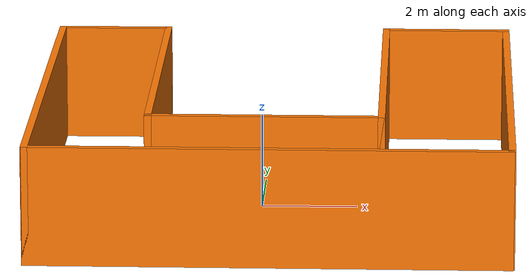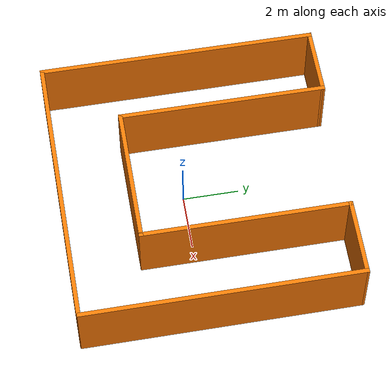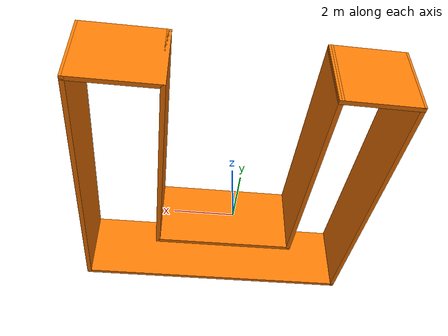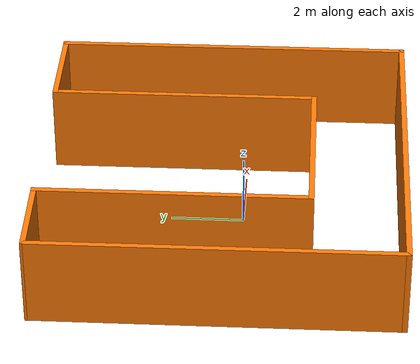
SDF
<?xml version='1.0'?>
<sdf version='1.6'>
  <model name='UWorld.'>
    <pose frame=''>0.277171 0.54339 0 0 -0 0</pose>
    <link name='Wall_0'>
      <collision name='Wall_0_Collision'>
        <geometry>
          <box>
            <size>10 0.15 2.5</size>
          </box>
        </geometry>
        <pose frame=''>0 0 1.25 0 -0 0</pose>
      </collision>
      <visual name='Wall_0_Visual'>
        <pose frame=''>0 0 1.25 0 -0 0</pose>
        <geometry>
          <box>
            <size>10 0.15 2.5</size>
          </box>
        </geometry>
        <material>
          <script>
            <uri>file://media/materials/scripts/gazebo.material</uri>
            <name>Gazebo/Grey</name>
          </script>
          <ambient>0.996078 0.47451 0.0196078 1</ambient>
        </material>
        <meta>
          <layer>0</layer>
        </meta>
      </visual>
      <pose frame=''>-4.93717 -0.00839 0 0 -0 1.5708</pose>
    </link>
    <link name='Wall_1'>
      <collision name='Wall_1_Collision'>
        <geometry>
          <box>
            <size>2.5 0.15 2.5</size>
          </box>
        </geometry>
        <pose frame=''>0 0 1.25 0 -0 0</pose>
      </collision>
      <visual name='Wall_1_Visual'>
        <pose frame=''>0 0 1.25 0 -0 0</pose>
        <geometry>
          <box>
            <size>2.5 0.15 2.5</size>
          </box>
        </geometry>
        <material>
          <script>
            <uri>file://media/materials/scripts/gazebo.material</uri>
            <name>Gazebo/Grey</name>
          </script>
          <ambient>0.996078 0.47451 0.0196078 1</ambient>
        </material>
        <meta>
          <layer>0</layer>
        </meta>
      </visual>
      <pose frame=''>-3.7622 4.92474 0 0 -0 0.006921</pose>
    </link>
    <link name='Wall_10'>
      <collision name='Wall_10_Collision'>
        <geometry>
          <box>
            <size>10 0.15 2.5</size>
          </box>
        </geometry>
        <pose frame=''>0 0 1.25 0 -0 0</pose>
      </collision>
      <visual name='Wall_10_Visual'>
        <pose frame=''>0 0 1.25 0 -0 0</pose>
        <geometry>
          <box>
            <size>10 0.15 2.5</size>
          </box>
        </geometry>
        <material>
          <script>
            <uri>file://media/materials/scripts/gazebo.material</uri>
            <name>Gazebo/Grey</name>
          </script>
          <ambient>0.996078 0.47451 0.0196078 1</ambient>
        </material>
        <meta>
          <layer>0</layer>
        </meta>
      </visual>
      <pose frame=''>-0.012171 -4.93339 0 0 -0 0</pose>
    </link>
    <link name='Wall_2'>
      <collision name='Wall_2_Collision'>
        <geometry>
          <box>
            <size>7.5 0.15 2.5</size>
          </box>
        </geometry>
        <pose frame=''>0 0 1.25 0 -0 0</pose>
      </collision>
      <visual name='Wall_2_Visual'>
        <pose frame=''>0 0 1.25 0 -0 0</pose>
        <geometry>
          <box>
            <size>7.5 0.15 2.5</size>
          </box>
        </geometry>
        <material>
          <script>
            <uri>file://media/materials/scripts/gazebo.material</uri>
            <name>Gazebo/Grey</name>
          </script>
          <ambient>0.996078 0.47451 0.0196078 1</ambient>
        </material>
        <meta>
          <layer>0</layer>
        </meta>
      </visual>
      <pose frame=''>-2.58723 1.25787 0 0 0 -1.5708</pose>
    </link>
    <link name='Wall_3'>
      <collision name='Wall_3_Collision'>
        <geometry>
          <box>
            <size>5 0.15 2.5</size>
          </box>
        </geometry>
        <pose frame=''>0 0 1.25 0 -0 0</pose>
      </collision>
      <visual name='Wall_3_Visual'>
        <pose frame=''>0 0 1.25 0 -0 0</pose>
        <geometry>
          <box>
            <size>5 0.15 2.5</size>
          </box>
        </geometry>
        <material>
          <script>
            <uri>file://media/materials/scripts/gazebo.material</uri>
            <name>Gazebo/Grey</name>
          </script>
          <ambient>0.996078 0.47451 0.0196078 1</ambient>
        </material>
        <meta>
          <layer>0</layer>
        </meta>
      </visual>
      <pose frame=''>-0.162227 -2.41713 0 0 -0 0</pose>
    </link>
    <link name='Wall_4'>
      <collision name='Wall_4_Collision'>
        <geometry>
          <box>
            <size>7.5 0.15 2.5</size>
          </box>
        </geometry>
        <pose frame=''>0 0 1.25 0 -0 0</pose>
      </collision>
      <visual name='Wall_4_Visual'>
        <pose frame=''>0 0 1.25 0 -0 0</pose>
        <geometry>
          <box>
            <size>7.5 0.15 2.5</size>
          </box>
        </geometry>
        <material>
          <script>
            <uri>file://media/materials/scripts/gazebo.material</uri>
            <name>Gazebo/Grey</name>
          </script>
          <ambient>0.996078 0.47451 0.0196078 1</ambient>
        </material>
        <meta>
          <layer>0</layer>
        </meta>
      </visual>
      <pose frame=''>2.26277 1.25787 0 0 -0 1.5708</pose>
    </link>
    <link name='Wall_5'>
      <collision name='Wall_5_Collision'>
        <geometry>
          <box>
            <size>2.8 0.15 2.5</size>
          </box>
        </geometry>
        <pose frame=''>0 0 1.25 0 -0 0</pose>
      </collision>
      <visual name='Wall_5_Visual'>
        <pose frame=''>0 0 1.25 0 -0 0</pose>
        <geometry>
          <box>
            <size>2.8 0.15 2.5</size>
          </box>
        </geometry>
        <material>
          <script>
            <uri>file://media/materials/scripts/gazebo.material</uri>
            <name>Gazebo/Grey</name>
          </script>
          <ambient>0.996078 0.47451 0.0196078 1</ambient>
        </material>
        <meta>
          <layer>0</layer>
        </meta>
      </visual>
      <pose frame=''>3.58777 4.93287 0 0 -0 0</pose>
    </link>
    <link name='Wall_6'>
      <collision name='Wall_6_Collision'>
        <geometry>
          <box>
            <size>9.99468 0.15 2.5</size>
          </box>
        </geometry>
        <pose frame=''>0 0 1.25 0 -0 0</pose>
      </collision>
      <visual name='Wall_6_Visual'>
        <pose frame=''>0 0 1.25 0 -0 0</pose>
        <geometry>
          <box>
            <size>9.99468 0.15 2.5</size>
          </box>
        </geometry>
        <material>
          <script>
            <uri>file://media/materials/scripts/gazebo.material</uri>
            <name>Gazebo/Grey</name>
          </script>
          <ambient>0.996078 0.47451 0.0196078 1</ambient>
        </material>
        <meta>
          <layer>0</layer>
        </meta>
      </visual>
      <pose frame=''>4.92514 0.010551 0 0 0 -1.56828</pose>
    </link>
    <static>1</static>
  </model>
</sdf>
